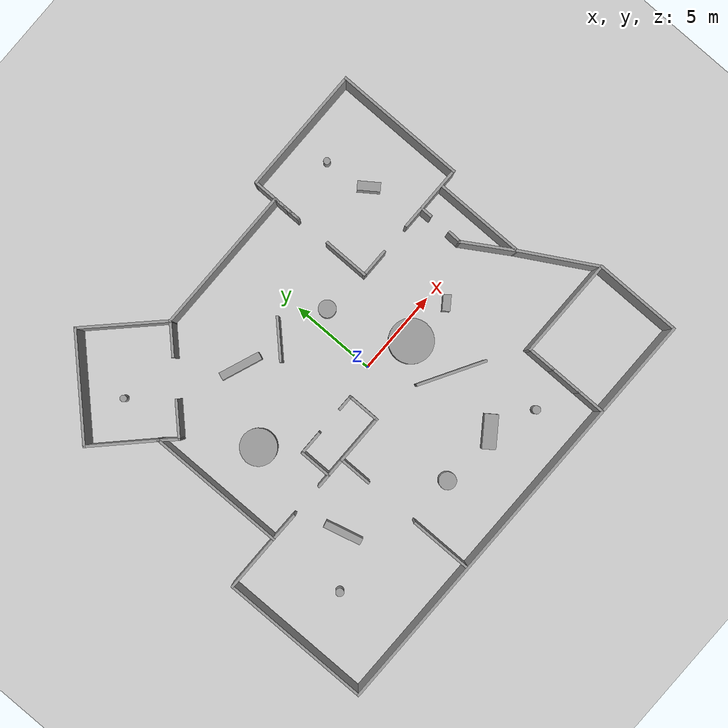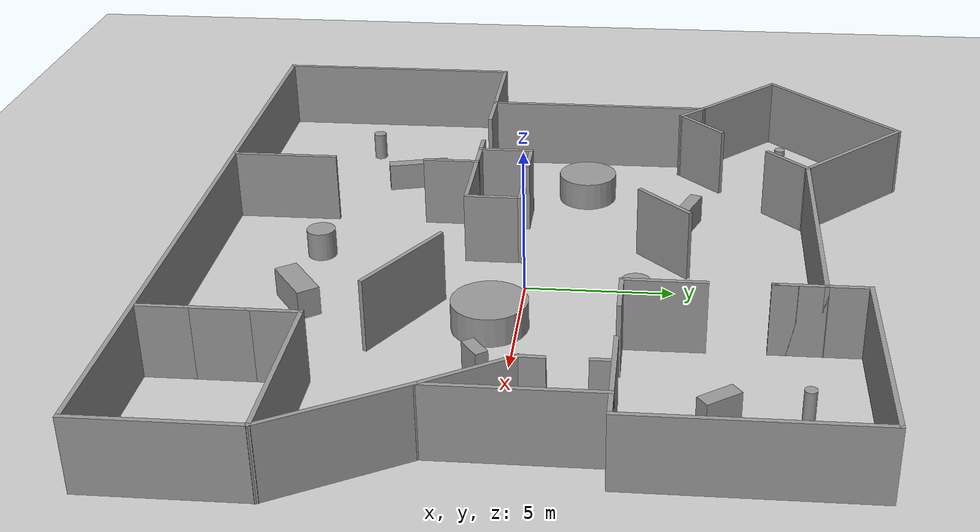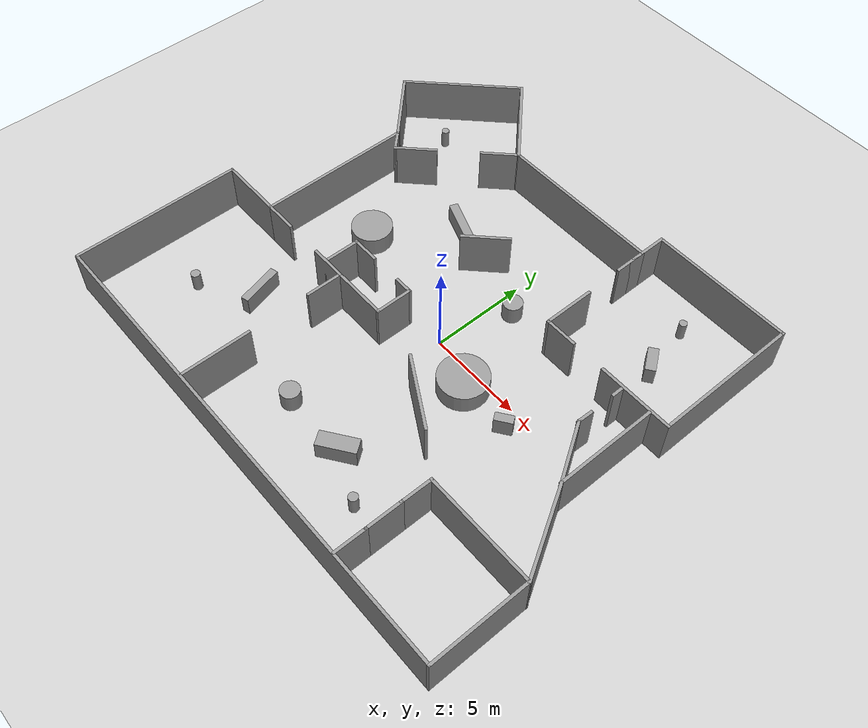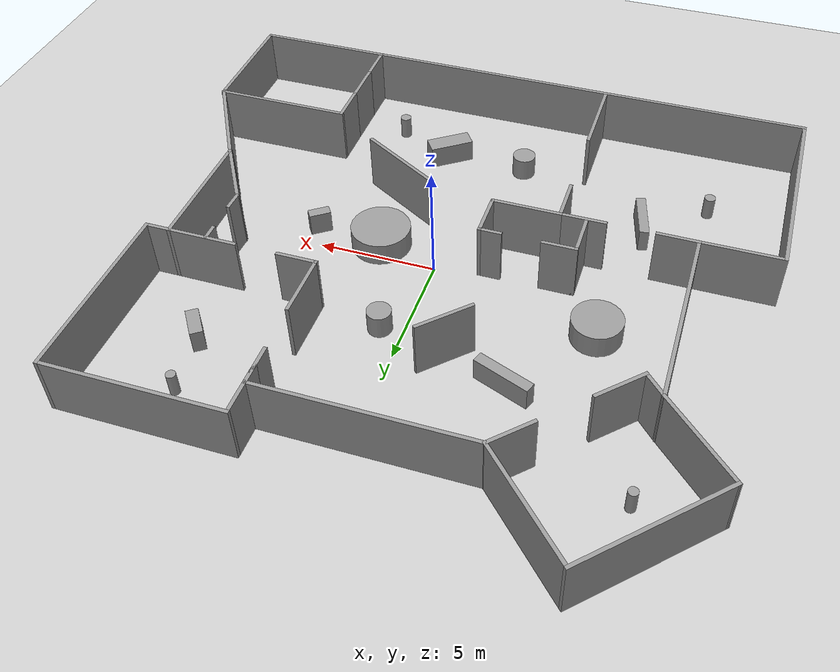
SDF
<sdf version="1.7">
 <world name="default">
  <light name="sun" type="directional">
   <pose>0 0 10 0 -0 0</pose>
   <diffuse>0.8 0.8 0.8 1</diffuse>
   <specular>0.2 0.2 0.2 1</specular>
   <attenuation>
    <range>1000</range>
    <constant>0.9</constant>
    <linear>0.01</linear>
    <quadratic>0.001</quadratic>
   </attenuation>
   <direction>-0.5 0.1 -0.9</direction>
   <spot><inner_angle>0</inner_angle><outer_angle>0</outer_angle><falloff>0</falloff></spot>
  </light>
  <model name="ground_plane">
   <static>1</static>
   <link name="link">
    <collision name="collision">
     <geometry><plane><normal>0 0 1</normal><size>100 100</size></plane></geometry>
     <surface>
      <contact><collide_bitmask>65535</collide_bitmask></contact>
      <friction><ode><mu>100</mu><mu2>50</mu2></ode></friction>
     </surface>
    </collision>
    <visual name="visual">
     <cast_shadows>0</cast_shadows>
     <geometry><plane><normal>0 0 1</normal><size>100 100</size></plane></geometry>
     <material>
      <script><uri>file://media/materials/scripts/gazebo.material</uri><name>Gazebo/Grey</name></script>
     </material>
    </visual>
   </link>
  </model>
  <gravity>0 0 -9.8</gravity>
  <magnetic_field>6e-06 2.3e-05 -4.2e-05</magnetic_field>
  <atmosphere type="adiabatic"/>
  <physics type="ode">
   <max_step_size>0.001</max_step_size>
   <real_time_factor>1</real_time_factor>
   <real_time_update_rate>1000</real_time_update_rate>
  </physics>
  <scene><ambient>0.4 0.4 0.4 1</ambient><background>0.7 0.7 0.7 1</background><shadows>1</shadows></scene>
  <spherical_coordinates>
   <surface_model>EARTH_WGS84</surface_model>
   <latitude_deg>0</latitude_deg>
   <longitude_deg>0</longitude_deg>
   <elevation>0</elevation>
   <heading_deg>0</heading_deg>
  </spherical_coordinates>
  <model name="unit_cylinder">
   <pose>2.62572 -0.867429 0.5 0 -0 0</pose>
   <link name="link">
    <inertial>
     <mass>1</mass>
     <inertia><ixx>0.145833</ixx><ixy>0</ixy><ixz>0</ixz><iyy>0.145833</iyy><iyz>0</iyz><izz>0.125</izz></inertia>
    </inertial>
    <collision name="collision">
     <geometry><cylinder><radius>1.26779</radius><length>1</length></cylinder></geometry>
    </collision>
    <visual name="visual">
     <geometry><cylinder><radius>1.26779</radius><length>1</length></cylinder></geometry>
     <material>
      <script><name>Gazebo/Grey</name><uri>file://media/materials/scripts/gazebo.material</uri></script>
     </material>
    </visual>
   </link>
  </model>
  <model name="unit_cylinder_0">
   <pose>-7.19602 1.66516 0.5 -0 -0 -1e-06</pose>
   <link name="link">
    <inertial>
     <mass>1</mass>
     <inertia><ixx>0.145833</ixx><ixy>0</ixy><ixz>0</ixz><iyy>0.145833</iyy><iyz>0</iyz><izz>0.125</izz></inertia>
    </inertial>
    <collision name="collision">
     <geometry><cylinder><radius>1.05173</radius><length>1</length></cylinder></geometry>
    </collision>
    <visual name="visual">
     <geometry><cylinder><radius>1.05173</radius><length>1</length></cylinder></geometry>
     <material>
      <script><name>Gazebo/Grey</name><uri>file://media/materials/scripts/gazebo.material</uri></script>
     </material>
    </visual>
   </link>
  </model>
  <model name="unit_cylinder_1">
   <pose>-1.85797 -7.33892 0.5 0 -0 0</pose>
   <link name="link">
    <inertial>
     <mass>1</mass>
     <inertia><ixx>0.145833</ixx><ixy>0</ixy><ixz>0</ixz><iyy>0.145833</iyy><iyz>0</iyz><izz>0.125</izz></inertia>
    </inertial>
    <collision name="collision">
     <geometry><cylinder><radius>0.5</radius><length>1</length></cylinder></geometry>
    </collision>
    <visual name="visual">
     <geometry><cylinder><radius>0.5</radius><length>1</length></cylinder></geometry>
     <material>
      <script><name>Gazebo/Grey</name><uri>file://media/materials/scripts/gazebo.material</uri></script>
     </material>
    </visual>
   </link>
  </model>
  <model name="unit_cylinder_2">
   <pose>0.963736 3.74925 0.5 0 -0 -0.574314</pose>
   <link name="link">
    <inertial>
     <mass>1</mass>
     <inertia><ixx>0.145833</ixx><ixy>0</ixy><ixz>0</ixz><iyy>0.145833</iyy><iyz>0</iyz><izz>0.125</izz></inertia>
    </inertial>
    <collision name="collision">
     <geometry><cylinder><radius>0.500364</radius><length>1</length></cylinder></geometry>
    </collision>
    <visual name="visual">
     <geometry><cylinder><radius>0.500364</radius><length>1</length></cylinder></geometry>
     <material>
      <script><name>Gazebo/Grey</name><uri>file://media/materials/scripts/gazebo.material</uri></script>
     </material>
    </visual>
   </link>
  </model>
  <model name="unit_box">
   <pose>-4.48107 5.29326 0.49997 -2.5e-05 -1e-05 -0.365945</pose>
   <link name="link">
    <inertial>
     <mass>1</mass>
     <inertia>
      <ixx>0.166667</ixx>
      <ixy>0</ixy>
      <ixz>0</ixz>
      <iyy>0.166667</iyy>
      <iyz>0</iyz>
      <izz>0.166667</izz>
     </inertia>
    </inertial>
    <collision name="collision"><geometry><box><size>2.4472 0.451067 1</size></box></geometry></collision>
    <visual name="visual">
     <geometry><box><size>2.4472 0.451067 1</size></box></geometry>
     <material>
      <script><name>Gazebo/Grey</name><uri>file://media/materials/scripts/gazebo.material</uri></script>
     </material>
    </visual>
   </link>
  </model>
  <model name="unit_box_0">
   <pose>1.69022 -7.34875 0.5 0 2e-06 0.625012</pose>
   <link name="link">
    <inertial>
     <mass>1</mass>
     <inertia>
      <ixx>0.166667</ixx>
      <ixy>0</ixy>
      <ixz>0</ixz>
      <iyy>0.166667</iyy>
      <iyz>0</iyz>
      <izz>0.166667</izz>
     </inertia>
    </inertial>
    <collision name="collision"><geometry><box><size>1.94075 0.778035 1</size></box></geometry></collision>
    <visual name="visual">
     <geometry><box><size>1.94075 0.778035 1</size></box></geometry>
     <material>
      <script><name>Gazebo/Grey</name><uri>file://media/materials/scripts/gazebo.material</uri></script>
     </material>
    </visual>
   </link>
  </model>
  <model name="some_building">
   <pose>-0.707357 1.096 0 0 -0 0</pose>
   <link name="Wall_10">
    <collision name="Wall_10_Collision">
     <geometry><box><size>7.75 0.15 2.5</size></box></geometry>
     <pose>0 0 1.25 0 -0 0</pose>
    </collision>
    <visual name="Wall_10_Visual">
     <pose>0 0 1.25 0 -0 0</pose>
     <geometry><box><size>7.75 0.15 2.5</size></box></geometry>
     <material>
      <script><uri>file://media/materials/scripts/gazebo.material</uri><name>Gazebo/Grey</name></script>
      <ambient>1 1 1 1</ambient>
     </material>
     <meta><layer>0</layer></meta>
    </visual>
    <pose>11.6113 6.0732 0 0 -0 1.5708</pose>
   </link>
   <link name="Wall_11">
    <collision name="Wall_11_Collision">
     <geometry><box><size>7.5 0.15 2.5</size></box></geometry>
     <pose>0 0 1.25 0 -0 0</pose>
    </collision>
    <visual name="Wall_11_Visual">
     <pose>0 0 1.25 0 -0 0</pose>
     <geometry><box><size>7.5 0.15 2.5</size></box></geometry>
     <material>
      <script><uri>file://media/materials/scripts/gazebo.material</uri><name>Gazebo/Grey</name></script>
      <ambient>1 1 1 1</ambient>
     </material>
     <meta><layer>0</layer></meta>
    </visual>
    <pose>7.93627 9.8732 0 0 -0 3.14159</pose>
   </link>
   <link name="Wall_12">
    <collision name="Wall_12_Collision">
     <geometry><box><size>1.5 0.15 2.5</size></box></geometry>
     <pose>0 0 1.25 0 -0 0</pose>
    </collision>
    <visual name="Wall_12_Visual">
     <pose>0 0 1.25 0 -0 0</pose>
     <geometry><box><size>1.5 0.15 2.5</size></box></geometry>
     <material>
      <script><uri>file://media/materials/scripts/gazebo.material</uri><name>Gazebo/Grey</name></script>
      <ambient>1 1 1 1</ambient>
     </material>
     <meta><layer>0</layer></meta>
    </visual>
    <pose>4.26127 9.1982 0 0 -0 -1.5708</pose>
   </link>
   <link name="Wall_13">
    <collision name="Wall_13_Collision">
     <geometry><box><size>1.75 0.15 2.5</size></box></geometry>
     <pose>0 0 1.25 0 -0 0</pose>
    </collision>
    <visual name="Wall_13_Visual">
     <pose>0 0 1.25 0 -0 0</pose>
     <geometry><box><size>1.75 0.15 2.5</size></box></geometry>
     <material>
      <script><uri>file://media/materials/scripts/gazebo.material</uri><name>Gazebo/Grey</name></script>
      <ambient>1 1 1 1</ambient>
     </material>
     <meta><layer>0</layer></meta>
    </visual>
    <pose>4.26127 7.7232 0 0 -0 -1.5708</pose>
   </link>
   <link name="Wall_14">
    <collision name="Wall_14_Collision">
     <geometry><box><size>1.75 0.15 2.5</size></box></geometry>
     <pose>0 0 1.25 0 -0 0</pose>
    </collision>
    <visual name="Wall_14_Visual">
     <pose>0 0 1.25 0 -0 0</pose>
     <geometry><box><size>1.75 0.15 2.5</size></box></geometry>
     <material>
      <script><uri>file://media/materials/scripts/gazebo.material</uri><name>Gazebo/Grey</name></script>
      <ambient>1 1 1 1</ambient>
     </material>
     <meta><layer>0</layer></meta>
    </visual>
    <pose>4.26127 7.7232 0 0 -0 1.5708</pose>
   </link>
   <link name="Wall_15">
    <collision name="Wall_15_Collision">
     <geometry><box><size>8.75 0.15 2.5</size></box></geometry>
     <pose>0 0 1.25 0 -0 0</pose>
    </collision>
    <visual name="Wall_15_Visual">
     <pose>0 0 1.25 0 -0 0</pose>
     <geometry><box><size>8.75 0.15 2.5</size></box></geometry>
     <material>
      <script><uri>file://media/materials/scripts/gazebo.material</uri><name>Gazebo/Grey</name></script>
      <ambient>1 1 1 1</ambient>
     </material>
     <meta><layer>0</layer></meta>
    </visual>
    <pose>-0.038726 8.5232 0 0 -0 3.14159</pose>
   </link>
   <link name="Wall_16">
    <collision name="Wall_16_Collision">
     <geometry><box><size>5.25 0.15 2.5</size></box></geometry>
     <pose>0 0 1.25 0 -0 0</pose>
    </collision>
    <visual name="Wall_16_Visual">
     <pose>0 0 1.25 0 -0 0</pose>
     <geometry><box><size>5.25 0.15 2.5</size></box></geometry>
     <material>
      <script><uri>file://media/materials/scripts/gazebo.material</uri><name>Gazebo/Grey</name></script>
      <ambient>1 1 1 1</ambient>
     </material>
     <meta><layer>0</layer></meta>
    </visual>
    <pose>-6.14185 10.3263 0 0 -0 2.35619</pose>
   </link>
   <link name="Wall_17">
    <collision name="Wall_17_Collision">
     <geometry><box><size>6.5 0.15 2.5</size></box></geometry>
     <pose>0 0 1.25 0 -0 0</pose>
    </collision>
    <visual name="Wall_17_Visual">
     <pose>0 0 1.25 0 -0 0</pose>
     <geometry><box><size>6.5 0.15 2.5</size></box></geometry>
     <material>
      <script><uri>file://media/materials/scripts/gazebo.material</uri><name>Gazebo/Grey</name></script>
      <ambient>1 1 1 1</ambient>
     </material>
     <meta><layer>0</layer></meta>
    </visual>
    <pose>-10.19 9.88438 0 0 -0 -2.35619</pose>
   </link>
   <link name="Wall_18">
    <collision name="Wall_18_Collision">
     <geometry><box><size>4.1526 0.15 2.5</size></box></geometry>
     <pose>0 0 1.25 0 -0 0</pose>
    </collision>
    <visual name="Wall_18_Visual">
     <pose>0 0 1.25 0 -0 0</pose>
     <geometry><box><size>4.1526 0.15 2.5</size></box></geometry>
     <material>
      <script><uri>file://media/materials/scripts/gazebo.material</uri><name>Gazebo/Grey</name></script>
      <ambient>1 1 1 1</ambient>
     </material>
     <meta><layer>0</layer></meta>
    </visual>
    <pose>-11.0103 6.23393 0 0 -0 -0.778534</pose>
   </link>
   <link name="Wall_19">
    <collision name="Wall_19_Collision">
     <geometry><box><size>8.25 0.15 2.5</size></box></geometry>
     <pose>0 0 1.25 0 -0 0</pose>
    </collision>
    <visual name="Wall_19_Visual">
     <pose>0 0 1.25 0 -0 0</pose>
     <geometry><box><size>8.25 0.15 2.5</size></box></geometry>
     <material>
      <script><uri>file://media/materials/scripts/gazebo.material</uri><name>Gazebo/Grey</name></script>
      <ambient>1 1 1 1</ambient>
     </material>
     <meta><layer>0</layer></meta>
    </visual>
    <pose>-9.58547 0.778551 0 0 -0 -1.5708</pose>
   </link>
   <link name="Wall_2">
    <collision name="Wall_2_Collision">
     <geometry><box><size>26 0.15 2.5</size></box></geometry>
     <pose>0 0 1.25 0 -0 0</pose>
    </collision>
    <visual name="Wall_2_Visual">
     <pose>0 0 1.25 0 -0 0</pose>
     <geometry><box><size>26 0.15 2.5</size></box></geometry>
     <material>
      <script><uri>file://media/materials/scripts/gazebo.material</uri><name>Gazebo/Grey</name></script>
      <ambient>1 1 1 1</ambient>
     </material>
     <meta><layer>0</layer></meta>
    </visual>
    <pose>-0.013726 -12.1605 0 0 -0 0</pose>
   </link>
   <link name="Wall_20">
    <collision name="Wall_20_Collision">
     <geometry><box><size>3.5 0.15 2.5</size></box></geometry>
     <pose>0 0 1.25 0 -0 0</pose>
    </collision>
    <visual name="Wall_20_Visual">
     <pose>0 0 1.25 0 -0 0</pose>
     <geometry><box><size>3.5 0.15 2.5</size></box></geometry>
     <material>
      <script><uri>file://media/materials/scripts/gazebo.material</uri><name>Gazebo/Grey</name></script>
      <ambient>1 1 1 1</ambient>
     </material>
     <meta><layer>0</layer></meta>
    </visual>
    <pose>-11.2605 -3.27145 0 0 -0 3.14159</pose>
   </link>
   <link name="Wall_21">
    <collision name="Wall_21_Collision">
     <geometry><box><size>9 0.15 2.5</size></box></geometry>
     <pose>0 0 1.25 0 -0 0</pose>
    </collision>
    <visual name="Wall_21_Visual">
     <pose>0 0 1.25 0 -0 0</pose>
     <geometry><box><size>9 0.15 2.5</size></box></geometry>
     <material>
      <script><uri>file://media/materials/scripts/gazebo.material</uri><name>Gazebo/Grey</name></script>
      <ambient>1 1 1 1</ambient>
     </material>
     <meta><layer>0</layer></meta>
    </visual>
    <pose>-12.9355 -7.69645 0 0 -0 -1.5708</pose>
   </link>
   <link name="Wall_26">
    <collision name="Wall_26_Collision">
     <geometry><box><size>1.24784 0.15 2.5</size></box></geometry>
     <pose>0 0 1.25 0 -0 0</pose>
    </collision>
    <visual name="Wall_26_Visual">
     <pose>0 0 1.25 0 -0 0</pose>
     <geometry><box><size>1.24784 0.15 2.5</size></box></geometry>
     <material>
      <script><uri>file://media/materials/scripts/gazebo.material</uri><name>Gazebo/Grey</name></script>
      <ambient>1 1 1 1</ambient>
     </material>
     <meta><layer>0</layer></meta>
    </visual>
    <pose>-9.20716 4.43081 0 0 -0 2.33116</pose>
   </link>
   <link name="Wall_28">
    <collision name="Wall_28_Collision">
     <geometry><box><size>2.25 0.15 2.5</size></box></geometry>
     <pose>0 0 1.25 0 -0 0</pose>
    </collision>
    <visual name="Wall_28_Visual">
     <pose>0 0 1.25 0 -0 0</pose>
     <geometry><box><size>2.25 0.15 2.5</size></box></geometry>
     <material>
      <script><uri>file://media/materials/scripts/gazebo.material</uri><name>Gazebo/Grey</name></script>
      <ambient>1 1 1 1</ambient>
     </material>
     <meta><layer>0</layer></meta>
    </visual>
    <pose>-8.08639 4.77554 0 0 -0 0.785398</pose>
   </link>
   <link name="Wall_3">
    <collision name="Wall_3_Collision">
     <geometry><box><size>5.25 0.15 2.5</size></box></geometry>
     <pose>0 0 1.25 0 -0 0</pose>
    </collision>
    <visual name="Wall_3_Visual">
     <pose>0 0 1.25 0 -0 0</pose>
     <geometry><box><size>5.25 0.15 2.5</size></box></geometry>
     <material>
      <script><uri>file://media/materials/scripts/gazebo.material</uri><name>Gazebo/Grey</name></script>
      <ambient>1 1 1 1</ambient>
     </material>
     <meta><layer>0</layer></meta>
    </visual>
    <pose>12.9113 -9.61051 0 0 -0 1.5708</pose>
   </link>
   <link name="Wall_30">
    <collision name="Wall_30_Collision">
     <geometry><box><size>2.05 0.15 2.5</size></box></geometry>
     <pose>0 0 1.25 0 -0 0</pose>
    </collision>
    <visual name="Wall_30_Visual">
     <pose>0 0 1.25 0 -0 0</pose>
     <geometry><box><size>2.05 0.15 2.5</size></box></geometry>
     <material>
      <script><uri>file://media/materials/scripts/gazebo.material</uri><name>Gazebo/Grey</name></script>
      <ambient>1 1 1 1</ambient>
     </material>
     <meta><layer>0</layer></meta>
    </visual>
    <pose>-5.01048 7.85145 0 0 -0 0.785398</pose>
   </link>
   <link name="Wall_32">
    <collision name="Wall_32_Collision">
     <geometry><box><size>1.75 0.15 2.5</size></box></geometry>
     <pose>0 0 1.25 0 -0 0</pose>
    </collision>
    <visual name="Wall_32_Visual">
     <pose>0 0 1.25 0 -0 0</pose>
     <geometry><box><size>1.75 0.15 2.5</size></box></geometry>
     <material>
      <script><uri>file://media/materials/scripts/gazebo.material</uri><name>Gazebo/Grey</name></script>
      <ambient>1 1 1 1</ambient>
     </material>
     <meta><layer>0</layer></meta>
    </visual>
    <pose>7.06127 -7.86051 0 0 -0 -1.5708</pose>
   </link>
   <link name="Wall_33">
    <collision name="Wall_33_Collision">
     <geometry><box><size>2 0.15 2.5</size></box></geometry>
     <pose>0 0 1.25 0 -0 0</pose>
    </collision>
    <visual name="Wall_33_Visual">
     <pose>0 0 1.25 0 -0 0</pose>
     <geometry><box><size>2 0.15 2.5</size></box></geometry>
     <material>
      <script><uri>file://media/materials/scripts/gazebo.material</uri><name>Gazebo/Grey</name></script>
      <ambient>1 1 1 1</ambient>
     </material>
     <meta><layer>0</layer></meta>
    </visual>
    <pose>7.06127 -9.58551 0 0 -0 -1.5708</pose>
   </link>
   <link name="Wall_34">
    <collision name="Wall_34_Collision">
     <geometry><box><size>1.75 0.15 2.5</size></box></geometry>
     <pose>0 0 1.25 0 -0 0</pose>
    </collision>
    <visual name="Wall_34_Visual">
     <pose>0 0 1.25 0 -0 0</pose>
     <geometry><box><size>1.75 0.15 2.5</size></box></geometry>
     <material>
      <script><uri>file://media/materials/scripts/gazebo.material</uri><name>Gazebo/Grey</name></script>
      <ambient>1 1 1 1</ambient>
     </material>
     <meta><layer>0</layer></meta>
    </visual>
    <pose>7.06127 -11.3105 0 0 -0 -1.5708</pose>
   </link>
   <link name="Wall_37">
    <collision name="Wall_37_Collision">
     <geometry><box><size>2 0.15 2.5</size></box></geometry>
     <pose>0 0 1.25 0 -0 0</pose>
    </collision>
    <visual name="Wall_37_Visual">
     <pose>0 0 1.25 0 -0 0</pose>
     <geometry><box><size>2 0.15 2.5</size></box></geometry>
     <material>
      <script><uri>file://media/materials/scripts/gazebo.material</uri><name>Gazebo/Grey</name></script>
      <ambient>1 1 1 1</ambient>
     </material>
     <meta><layer>0</layer></meta>
    </visual>
    <pose>-4.90999 -3.28492 0 0 -0 3.14159</pose>
   </link>
   <link name="Wall_39">
    <collision name="Wall_39_Collision">
     <geometry><box><size>1.80054 0.15 2.5</size></box></geometry>
     <pose>0 0 1.25 0 -0 0</pose>
    </collision>
    <visual name="Wall_39_Visual">
     <pose>0 0 1.25 0 -0 0</pose>
     <geometry><box><size>1.80054 0.15 2.5</size></box></geometry>
     <material>
      <script><uri>file://media/materials/scripts/gazebo.material</uri><name>Gazebo/Grey</name></script>
      <ambient>1 1 1 1</ambient>
     </material>
     <meta><layer>0</layer></meta>
    </visual>
    <pose>-8.76023 -3.27818 0 0 -0 3.13343</pose>
   </link>
   <link name="Wall_4">
    <collision name="Wall_4_Collision">
     <geometry><box><size>6 0.15 2.5</size></box></geometry>
     <pose>0 0 1.25 0 -0 0</pose>
    </collision>
    <visual name="Wall_4_Visual">
     <pose>0 0 1.25 0 -0 0</pose>
     <geometry><box><size>6 0.15 2.5</size></box></geometry>
     <material>
      <script><uri>file://media/materials/scripts/gazebo.material</uri><name>Gazebo/Grey</name></script>
      <ambient>1 1 1 1</ambient>
     </material>
     <meta><layer>0</layer></meta>
    </visual>
    <pose>9.98627 -7.06051 0 0 -0 3.14159</pose>
   </link>
   <link name="Wall_42">
    <collision name="Wall_42_Collision">
     <geometry><box><size>2 0.15 2.5</size></box></geometry>
     <pose>0 0 1.25 0 -0 0</pose>
    </collision>
    <visual name="Wall_42_Visual">
     <pose>0 0 1.25 0 -0 0</pose>
     <geometry><box><size>2 0.15 2.5</size></box></geometry>
     <material>
      <script><uri>file://media/materials/scripts/gazebo.material</uri><name>Gazebo/Grey</name></script>
      <ambient>1 1 1 1</ambient>
     </material>
     <meta><layer>0</layer></meta>
    </visual>
    <pose>-3.98499 -4.20992 0 0 -0 -1.5708</pose>
   </link>
   <link name="Wall_44">
    <collision name="Wall_44_Collision">
     <geometry><box><size>3.75 0.15 2.5</size></box></geometry>
     <pose>0 0 1.25 0 -0 0</pose>
    </collision>
    <visual name="Wall_44_Visual">
     <pose>0 0 1.25 0 -0 0</pose>
     <geometry><box><size>3.75 0.15 2.5</size></box></geometry>
     <material>
      <script><uri>file://media/materials/scripts/gazebo.material</uri><name>Gazebo/Grey</name></script>
      <ambient>1 1 1 1</ambient>
     </material>
     <meta><layer>0</layer></meta>
    </visual>
    <pose>-3.98499 -10.2849 0 0 -0 -1.5708</pose>
   </link>
   <link name="Wall_46">
    <collision name="Wall_46_Collision">
     <geometry><box><size>3 0.15 2.5</size></box></geometry>
     <pose>0 0 1.25 0 -0 0</pose>
    </collision>
    <visual name="Wall_46_Visual">
     <pose>0 0 1.25 0 -0 0</pose>
     <geometry><box><size>3 0.15 2.5</size></box></geometry>
     <material>
      <script><uri>file://media/materials/scripts/gazebo.material</uri><name>Gazebo/Grey</name></script>
      <ambient>1 1 1 1</ambient>
     </material>
     <meta><layer>0</layer></meta>
    </visual>
    <pose>-2.55999 -3.28492 0 0 -0 0</pose>
   </link>
   <link name="Wall_47">
    <collision name="Wall_47_Collision">
     <geometry><box><size>2 0.15 2.5</size></box></geometry>
     <pose>0 0 1.25 0 -0 0</pose>
    </collision>
    <visual name="Wall_47_Visual">
     <pose>0 0 1.25 0 -0 0</pose>
     <geometry><box><size>2 0.15 2.5</size></box></geometry>
     <material>
      <script><uri>file://media/materials/scripts/gazebo.material</uri><name>Gazebo/Grey</name></script>
      <ambient>1 1 1 1</ambient>
     </material>
     <meta><layer>0</layer></meta>
    </visual>
    <pose>-1.13499 -2.35992 0 0 -0 1.5708</pose>
   </link>
   <link name="Wall_48">
    <collision name="Wall_48_Collision">
     <geometry><box><size>1 0.15 2.5</size></box></geometry>
     <pose>0 0 1.25 0 -0 0</pose>
    </collision>
    <visual name="Wall_48_Visual">
     <pose>0 0 1.25 0 -0 0</pose>
     <geometry><box><size>1 0.15 2.5</size></box></geometry>
     <material>
      <script><uri>file://media/materials/scripts/gazebo.material</uri><name>Gazebo/Grey</name></script>
      <ambient>1 1 1 1</ambient>
     </material>
     <meta><layer>0</layer></meta>
    </visual>
    <pose>-1.55999 -1.43492 0 0 -0 3.14159</pose>
   </link>
   <link name="Wall_50">
    <collision name="Wall_50_Collision">
     <geometry><box><size>2 0.15 2.5</size></box></geometry>
     <pose>0 0 1.25 0 -0 0</pose>
    </collision>
    <visual name="Wall_50_Visual">
     <pose>0 0 1.25 0 -0 0</pose>
     <geometry><box><size>2 0.15 2.5</size></box></geometry>
     <material>
      <script><uri>file://media/materials/scripts/gazebo.material</uri><name>Gazebo/Grey</name></script>
      <ambient>1 1 1 1</ambient>
     </material>
     <meta><layer>0</layer></meta>
    </visual>
    <pose>-5.07979 -2.35992 0 0 -0 -1.5708</pose>
   </link>
   <link name="Wall_52">
    <collision name="Wall_52_Collision">
     <geometry><box><size>1.5 0.15 2.5</size></box></geometry>
     <pose>0 0 1.25 0 -0 0</pose>
    </collision>
    <visual name="Wall_52_Visual">
     <pose>0 0 1.25 0 -0 0</pose>
     <geometry><box><size>1.5 0.15 2.5</size></box></geometry>
     <material>
      <script><uri>file://media/materials/scripts/gazebo.material</uri><name>Gazebo/Grey</name></script>
      <ambient>1 1 1 1</ambient>
     </material>
     <meta><layer>0</layer></meta>
    </visual>
    <pose>-4.40479 -1.43492 0 0 -0 0</pose>
   </link>
   <link name="Wall_54">
    <collision name="Wall_54_Collision">
     <geometry><box><size>3.25258 0.15 2.5</size></box></geometry>
     <pose>0 0 1.25 0 -0 0</pose>
    </collision>
    <visual name="Wall_54_Visual">
     <pose>0 0 1.25 0 -0 0</pose>
     <geometry><box><size>3.25258 0.15 2.5</size></box></geometry>
     <material>
      <script><uri>file://media/materials/scripts/gazebo.material</uri><name>Gazebo/Grey</name></script>
      <ambient>1 1 1 1</ambient>
     </material>
     <meta><layer>0</layer></meta>
    </visual>
    <pose>9.79126 -1.75995 0 0 -0 2.12774</pose>
   </link>
   <link name="Wall_59">
    <collision name="Wall_59_Collision">
     <geometry><box><size>4 0.15 2.5</size></box></geometry>
     <pose>0 0 1.25 0 -0 0</pose>
    </collision>
    <visual name="Wall_59_Visual">
     <pose>0 0 1.25 0 -0 0</pose>
     <geometry><box><size>4 0.15 2.5</size></box></geometry>
     <material>
      <script><uri>file://media/materials/scripts/gazebo.material</uri><name>Gazebo/Grey</name></script>
      <ambient>1 1 1 1</ambient>
     </material>
     <meta><layer>0</layer></meta>
    </visual>
    <pose>9.68627 2.2732 0 0 -0 3.14159</pose>
   </link>
   <link name="Wall_6">
    <collision name="Wall_6_Collision">
     <geometry><box><size>4.75 0.15 2.5</size></box></geometry>
     <pose>0 0 1.25 0 -0 0</pose>
    </collision>
    <visual name="Wall_6_Visual">
     <pose>0 0 1.25 0 -0 0</pose>
     <geometry><box><size>4.75 0.15 2.5</size></box></geometry>
     <material>
      <script><uri>file://media/materials/scripts/gazebo.material</uri><name>Gazebo/Grey</name></script>
      <ambient>1 1 1 1</ambient>
     </material>
     <meta><layer>0</layer></meta>
    </visual>
    <pose>11.7613 -5.06866 0 0 -0 2.0944</pose>
   </link>
   <link name="Wall_61">
    <collision name="Wall_61_Collision">
     <geometry><box><size>1.75 0.15 2.5</size></box></geometry>
     <pose>0 0 1.25 0 -0 0</pose>
    </collision>
    <visual name="Wall_61_Visual">
     <pose>0 0 1.25 0 -0 0</pose>
     <geometry><box><size>1.75 0.15 2.5</size></box></geometry>
     <material>
      <script><uri>file://media/materials/scripts/gazebo.material</uri><name>Gazebo/Grey</name></script>
      <ambient>1 1 1 1</ambient>
     </material>
     <meta><layer>0</layer></meta>
    </visual>
    <pose>5.11127 2.2732 0 0 -0 3.14159</pose>
   </link>
   <link name="Wall_62">
    <collision name="Wall_62_Collision">
     <geometry><box><size>2.75 0.15 2.5</size></box></geometry>
     <pose>0 0 1.25 0 -0 0</pose>
    </collision>
    <visual name="Wall_62_Visual">
     <pose>0 0 1.25 0 -0 0</pose>
     <geometry><box><size>2.75 0.15 2.5</size></box></geometry>
     <material>
      <script><uri>file://media/materials/scripts/gazebo.material</uri><name>Gazebo/Grey</name></script>
      <ambient>1 1 1 1</ambient>
     </material>
     <meta><layer>0</layer></meta>
    </visual>
    <pose>4.31127 3.5732 0 0 -0 1.5708</pose>
   </link>
   <link name="Wall_64">
    <collision name="Wall_64_Collision">
     <geometry><box><size>0.75 0.15 2.5</size></box></geometry>
     <pose>0 0 1.25 0 -0 0</pose>
    </collision>
    <visual name="Wall_64_Visual">
     <pose>0 0 1.25 0 -0 0</pose>
     <geometry><box><size>0.75 0.15 2.5</size></box></geometry>
     <material>
      <script><uri>file://media/materials/scripts/gazebo.material</uri><name>Gazebo/Grey</name></script>
      <ambient>1 1 1 1</ambient>
     </material>
     <meta><layer>0</layer></meta>
    </visual>
    <pose>8.99538 1.94316 0 0 -0 -1.5708</pose>
   </link>
   <link name="Wall_67">
    <collision name="Wall_67_Collision">
     <geometry><box><size>0.886657 0.15 2.5</size></box></geometry>
     <pose>0 0 1.25 0 -0 0</pose>
    </collision>
    <visual name="Wall_67_Visual">
     <pose>0 0 1.25 0 -0 0</pose>
     <geometry><box><size>0.886657 0.15 2.5</size></box></geometry>
     <material>
      <script><uri>file://media/materials/scripts/gazebo.material</uri><name>Gazebo/Grey</name></script>
      <ambient>1 1 1 1</ambient>
     </material>
     <meta><layer>0</layer></meta>
    </visual>
    <pose>8.98332 -0.074971 0 0 -0 1.53804</pose>
   </link>
   <link name="Wall_69">
    <collision name="Wall_69_Collision">
     <geometry><box><size>2.5 0.15 2.5</size></box></geometry>
     <pose>0 0 1.25 0 -0 0</pose>
    </collision>
    <visual name="Wall_69_Visual">
     <pose>0 0 1.25 0 -0 0</pose>
     <geometry><box><size>2.5 0.15 2.5</size></box></geometry>
     <material>
      <script><uri>file://media/materials/scripts/gazebo.material</uri><name>Gazebo/Grey</name></script>
      <ambient>1 1 1 1</ambient>
     </material>
     <meta><layer>0</layer></meta>
    </visual>
    <pose>-1.28265 3.49405 0 0 -0 0.785398</pose>
   </link>
   <link name="Wall_7">
    <collision name="Wall_7_Collision">
     <geometry><box><size>5.5 0.15 2.5</size></box></geometry>
     <pose>0 0 1.25 0 -0 0</pose>
    </collision>
    <visual name="Wall_7_Visual">
     <pose>0 0 1.25 0 -0 0</pose>
     <geometry><box><size>5.5 0.15 2.5</size></box></geometry>
     <material>
      <script><uri>file://media/materials/scripts/gazebo.material</uri><name>Gazebo/Grey</name></script>
      <ambient>1 1 1 1</ambient>
     </material>
     <meta><layer>0</layer></meta>
    </visual>
    <pose>10.6113 -0.401797 0 0 -0 1.5708</pose>
   </link>
   <link name="Wall_71">
    <collision name="Wall_71_Collision">
     <geometry><box><size>4 0.15 2.5</size></box></geometry>
     <pose>0 0 1.25 0 -0 0</pose>
    </collision>
    <visual name="Wall_71_Visual">
     <pose>0 0 1.25 0 -0 0</pose>
     <geometry><box><size>4 0.15 2.5</size></box></geometry>
     <material>
      <script><uri>file://media/materials/scripts/gazebo.material</uri><name>Gazebo/Grey</name></script>
      <ambient>1 1 1 1</ambient>
     </material>
     <meta><layer>0</layer></meta>
    </visual>
    <pose>3.37644 -4.70308 0 0 -0 -0.523599</pose>
   </link>
   <static>1</static>
  </model>
  <model name="unit_cylinder_0_clone">
   <pose>-10.2957 -6.85074 0.5 0 0 -1e-06</pose>
   <link name="link">
    <inertial>
     <mass>1</mass>
     <inertia><ixx>0.145833</ixx><ixy>0</ixy><ixz>0</ixz><iyy>0.145833</iyy><iyz>0</iyz><izz>0.125</izz></inertia>
    </inertial>
    <collision name="collision">
     <geometry><cylinder><radius>0.237703</radius><length>1</length></cylinder></geometry>
    </collision>
    <visual name="visual">
     <geometry><cylinder><radius>0.237703</radius><length>1</length></cylinder></geometry>
     <material>
      <script><name>Gazebo/Grey</name><uri>file://media/materials/scripts/gazebo.material</uri></script>
     </material>
    </visual>
   </link>
  </model>
  <model name="unit_cylinder_0_clone_0">
   <pose>4.23219 -8.4875 0.5 0 0 -1e-06</pose>
   <link name="link">
    <inertial>
     <mass>1</mass>
     <inertia><ixx>0.145833</ixx><ixy>0</ixy><ixz>0</ixz><iyy>0.145833</iyy><iyz>0</iyz><izz>0.125</izz></inertia>
    </inertial>
    <collision name="collision">
     <geometry><cylinder><radius>0.237703</radius><length>1</length></cylinder></geometry>
    </collision>
    <visual name="visual">
     <geometry><cylinder><radius>0.237703</radius><length>1</length></cylinder></geometry>
     <material>
      <script><name>Gazebo/Grey</name><uri>file://media/materials/scripts/gazebo.material</uri></script>
     </material>
    </visual>
   </link>
  </model>
  <model name="unit_box_0_clone">
   <pose>5.46087 -0.971409 0.499995 8e-06 0 0.625012</pose>
   <link name="link">
    <inertial>
     <mass>1</mass>
     <inertia>
      <ixx>0.166667</ixx>
      <ixy>0</ixy>
      <ixz>0</ixz>
      <iyy>0.166667</iyy>
      <iyz>0</iyz>
      <izz>0.166667</izz>
     </inertia>
    </inertial>
    <collision name="collision"><geometry><box><size>0.914935 0.440965 1</size></box></geometry></collision>
    <visual name="visual">
     <geometry><box><size>0.914935 0.440965 1</size></box></geometry>
     <material>
      <script><name>Gazebo/Grey</name><uri>file://media/materials/scripts/gazebo.material</uri></script>
     </material>
    </visual>
   </link>
  </model>
  <model name="unit_box_0_clone_0">
   <pose>7.50429 6.38644 0.499995 8e-06 0 0.625012</pose>
   <link name="link">
    <inertial>
     <mass>1</mass>
     <inertia>
      <ixx>0.166667</ixx>
      <ixy>0</ixy>
      <ixz>0</ixz>
      <iyy>0.166667</iyy>
      <iyz>0</iyz>
      <izz>0.166667</izz>
     </inertia>
    </inertial>
    <collision name="collision"><geometry><box><size>0.515265 1.28529 1</size></box></geometry></collision>
    <visual name="visual">
     <geometry><box><size>0.515265 1.28529 1</size></box></geometry>
     <material>
      <script><name>Gazebo/Grey</name><uri>file://media/materials/scripts/gazebo.material</uri></script>
     </material>
    </visual>
   </link>
  </model>
  <model name="unit_cylinder_clone">
   <pose>7.05162 9.01641 0.5 0 -0 0</pose>
   <link name="link">
    <inertial>
     <mass>1</mass>
     <inertia><ixx>0.145833</ixx><ixy>0</ixy><ixz>0</ixz><iyy>0.145833</iyy><iyz>0</iyz><izz>0.125</izz></inertia>
    </inertial>
    <collision name="collision">
     <geometry><cylinder><radius>0.197194</radius><length>1</length></cylinder></geometry>
    </collision>
    <visual name="visual">
     <geometry><cylinder><radius>0.197194</radius><length>1</length></cylinder></geometry>
     <material>
      <script><name>Gazebo/Grey</name><uri>file://media/materials/scripts/gazebo.material</uri></script>
     </material>
    </visual>
   </link>
  </model>
  <model name="unit_cylinder_clone_0">
   <pose>-9.97974 8.97336 0.5 0 -0 0</pose>
   <link name="link">
    <inertial>
     <mass>1</mass>
     <inertia><ixx>0.145833</ixx><ixy>0</ixy><ixz>0</ixz><iyy>0.145833</iyy><iyz>0</iyz><izz>0.125</izz></inertia>
    </inertial>
    <collision name="collision">
     <geometry><cylinder><radius>0.197194</radius><length>1</length></cylinder></geometry>
    </collision>
    <visual name="visual">
     <geometry><cylinder><radius>0.197194</radius><length>1</length></cylinder></geometry>
     <material>
      <script><name>Gazebo/Grey</name><uri>file://media/materials/scripts/gazebo.material</uri></script>
     </material>
    </visual>
   </link>
  </model>
  <model name="unit_box_clone">
   <pose>-7.71746 -4.86946 0.49997 -2.6e-05 7e-06 0.254245</pose>
   <link name="link">
    <inertial>
     <mass>1</mass>
     <inertia>
      <ixx>0.166667</ixx>
      <ixy>0</ixy>
      <ixz>0</ixz>
      <iyy>0.166667</iyy>
      <iyz>0</iyz>
      <izz>0.166667</izz>
     </inertia>
    </inertial>
    <collision name="collision"><geometry><box><size>0.40863 2.21696 1</size></box></geometry></collision>
    <visual name="visual">
     <geometry><box><size>0.40863 2.21696 1</size></box></geometry>
     <material>
      <script><name>Gazebo/Grey</name><uri>file://media/materials/scripts/gazebo.material</uri></script>
     </material>
    </visual>
   </link>
  </model>
 </world>
</sdf>
